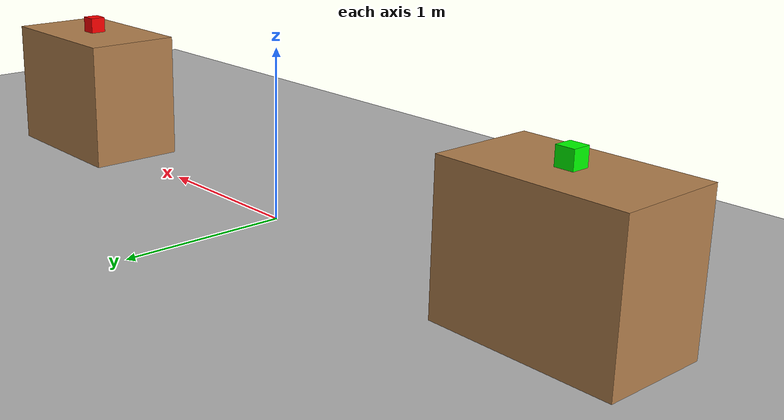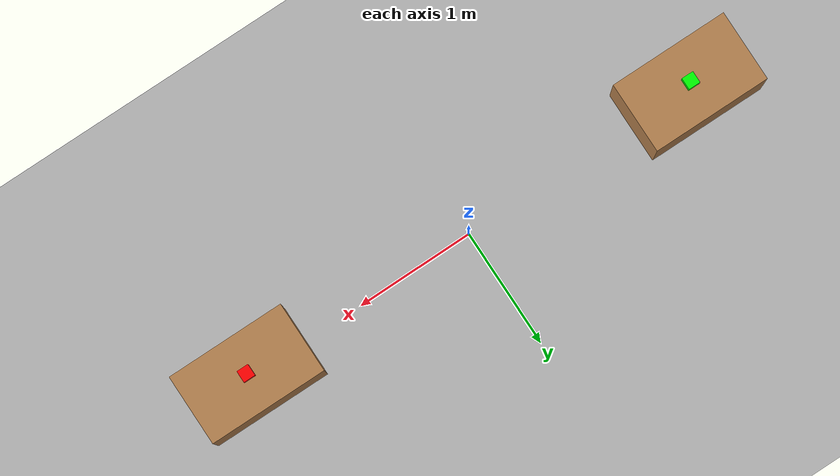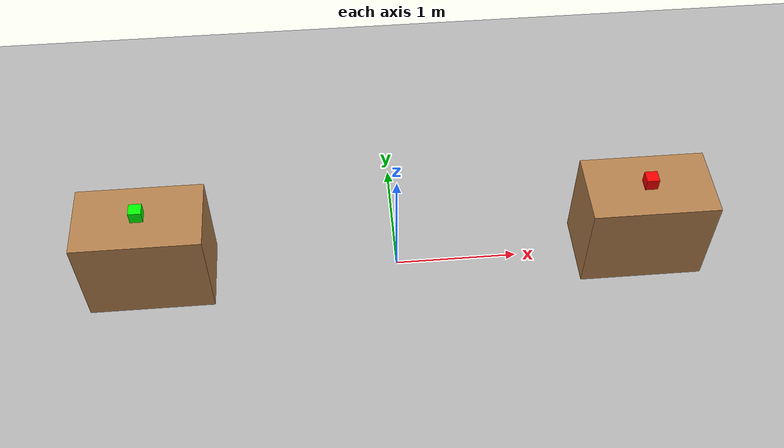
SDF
<?xml version="1.0"?>
<sdf version="1.6">
  <world name="dual_arm_robot_world">
    <physics type="ode">
      <max_step_size>0.001</max_step_size>
      <real_time_factor>1</real_time_factor>
      <real_time_update_rate>1000</real_time_update_rate>
      <gravity>0 0 -9.8</gravity>
    </physics>

    <scene>
      <ambient>0.5 0.5 0.5 1</ambient>
      <background>0.7 0.7 0.7 1</background>
      <shadows>true</shadows>
      <grid>false</grid>
    </scene>

    <light type="directional" name="sun">
      <cast_shadows>true</cast_shadows>
      <pose>0 0 10 0 0 0</pose>
      <diffuse>0.8 0.8 0.8 1</diffuse>
      <specular>0.2 0.2 0.2 1</specular>
      <attenuation>
        <range>1000</range>
        <constant>0.9</constant>
        <linear>0.01</linear>
        <quadratic>0.001</quadratic>
      </attenuation>
      <direction>-0.5 0.1 -0.9</direction>
    </light>

    <model name="ground_plane">
      <static>true</static>
      <link name="ground_link">
        <collision name="ground_collision">
          <geometry>
            <plane>
              <normal>0 0 1</normal>
              <size>100 100</size>
            </plane>
          </geometry>
          <surface>
            <friction>
              <ode>
                <mu>100</mu>
                <mu2>100</mu2>
              </ode>
            </friction>
            <bounce>
              <restitution_coefficient>0</restitution_coefficient>
              <threshold>1e+06</threshold>
            </bounce>
            <contact>
              <ode>
                <kp>1e+07</kp>
                <kd>1</kd>
              </ode>
            </contact>
          </surface>
        </collision>
        <visual name="ground_visual">
          <geometry>
            <plane>
              <normal>0 0 1</normal>
              <size>100 100</size>
            </plane>
          </geometry>
          <material>
            <ambient>0.5 0.5 0.5 1</ambient>
            <diffuse>0.7 0.7 0.7 1</diffuse>
            <specular>0.1 0.1 0.1 1</specular>
          </material>
        </visual>
      </link>
    </model>

    <model name="table1">
      <pose>2 0 0 0 0 0</pose>
      <static>true</static>
      <link name="table_link">
        <collision name="table_collision">
          <pose>0 0 0.4 0 0 0</pose>
          <geometry>
            <box>
              <size>1 0.6 0.8</size>
            </box>
          </geometry>
        </collision>
        <visual name="table_visual">
          <pose>0 0 0.4 0 0 0</pose>
          <geometry>
            <box>
              <size>1 0.6 0.8</size>
            </box>
          </geometry>
          <material>
            <ambient>0.6 0.4 0.2 1</ambient>
            <diffuse>0.7 0.5 0.3 1</diffuse>
            <specular>0.1 0.1 0.1 1</specular>
          </material>
        </visual>
      </link>
    </model>

    <model name="table2">
      <pose>-2 0 0 0 0 0</pose>
      <static>true</static>
      <link name="table_link">
        <collision name="table_collision">
          <pose>0 0 0.4 0 0 0</pose>
          <geometry>
            <box>
              <size>1 0.6 0.8</size>
            </box>
          </geometry>
        </collision>
        <visual name="table_visual">
          <pose>0 0 0.4 0 0 0</pose>
          <geometry>
            <box>
              <size>1 0.6 0.8</size>
            </box>
          </geometry>
          <material>
            <ambient>0.6 0.4 0.2 1</ambient>
            <diffuse>0.7 0.5 0.3 1</diffuse>
            <specular>0.1 0.1 0.1 1</specular>
          </material>
        </visual>
      </link>
    </model>

    <model name="box1">
      <pose>2 0 0.85 0 0 0</pose>
      <link name="box_link">
        <collision name="box_collision">
          <geometry>
            <box>
              <size>0.1 0.1 0.1</size>
            </box>
          </geometry>
        </collision>
        <visual name="box_visual">
          <geometry>
            <box>
              <size>0.1 0.1 0.1</size>
            </box>
          </geometry>
          <material>
            <ambient>1 0 0 1</ambient>
            <diffuse>1 0 0 1</diffuse>
            <specular>0.5 0.5 0.5 1</specular>
          </material>
        </visual>
        <inertial>
          <mass>0.1</mass>
          <inertia ixx="0.0001" ixy="0" ixz="0" iyy="0.0001" iyz="0" izz="0.0001"/>
        </inertial>
      </link>
    </model>

    <model name="box2">
      <pose>-2 0 0.85 0 0 0</pose>
      <link name="box_link">
        <collision name="box_collision">
          <geometry>
            <box>
              <size>0.1 0.1 0.1</size>
            </box>
          </geometry>
        </collision>
        <visual name="box_visual">
          <geometry>
            <box>
              <size>0.1 0.1 0.1</size>
            </box>
          </geometry>
          <material>
            <ambient>0 1 0 1</ambient>
            <diffuse>0 1 0 1</diffuse>
            <specular>0.5 0.5 0.5 1</specular>
          </material>
        </visual>
        <inertial>
          <mass>0.1</mass>
          <inertia ixx="0.0001" ixy="0" ixz="0" iyy="0.0001" iyz="0" izz="0.0001"/>
        </inertial>
      </link>
    </model>

    <gui fullscreen='0'>
      <camera name='user_camera'>
        <pose>5 -5 2 0 0.275 2.356</pose>
        <view_controller>orbit</view_controller>
      </camera>
    </gui>
  </world>
</sdf>
